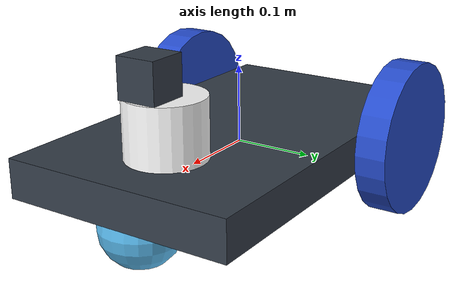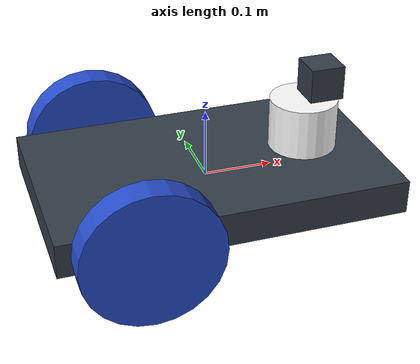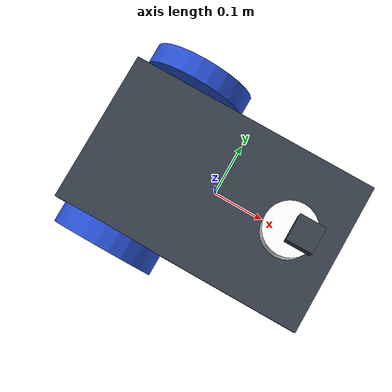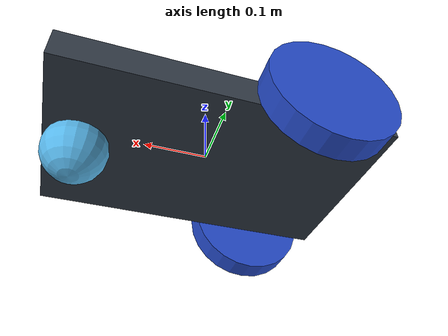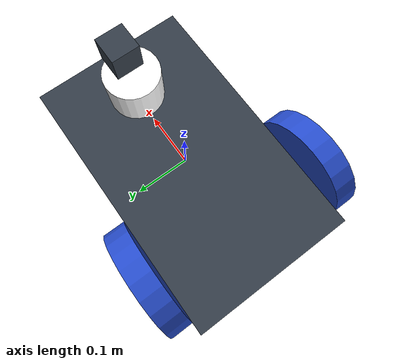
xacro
<?xml version="1.0" ?>

<robot name="wheeled-robot" xmlns:xacro="https://www.ros.org/wiki/xacro" >

<!-- Camera Parameters -->
<xacro:property name = "cameraSize" value = "0.05" />
<xacro:property name = "cameraMass" value = "0.1" />

<xacro:include filename="$(find wheeled-robot-description)/urdf/materials.xacro" />
<xacro:include filename="$(find wheeled-robot-description)/urdf/robot.gazebo" />
<xacro:include filename="$(find wheeled-robot-description)/urdf/macro.xacro" />

<!-- Robot Body    -->
  <link name="link_chassis">
    <!-- pose and inertial -->
    <pose>0 0 0.1 0 0 0</pose>
    <inertial>
      <mass value="5"/>
      <origin rpy="0 0 0" xyz="0 0 0.1"/>
      <inertia ixx="0.0395416666667" ixy="0" ixz="0" iyy="0.106208333333" iyz="0" izz="0.106208333333"/>
    </inertial>
    <collision name="collision_chassis">
      <geometry>
        <box size="0.5 0.3 0.05"/>
      </geometry>
    </collision>
    <visual>
      <origin rpy="0 0 0" xyz="0 0 0"/>
      <geometry>
        <box size="0.5 0.3 0.05"/>
      </geometry>
      <material name="blue"/>
    </visual>
    </link>

<!-- Caster  -->
  <link name = "caster_front">
    <inertial>
      <mass value="0.1"/>
      <inertia ixx="3.569e-7" ixy="0.000e+0" ixz="0.000e+0" iyy="5.344e-7" iyz="0.000e+0" izz="3.569e-7"/>
    </inertial>
    <collision name="caster_front_collision">
      <geometry>
        <sphere radius="0.05"/>
      </geometry>
      <surface>
        <friction>
          <ode>
            <mu>0</mu>
            <mu2>0</mu2>
            <slip1>1.0</slip1>
            <slip2>1.0</slip2>
          </ode>
        </friction>
      </surface>
    </collision>
    <visual name="caster_front_visual">
      <geometry>
        <sphere radius="0.05"/>
      </geometry>
    </visual>
  </link>

  <!-- Caster Joint  -->
  <joint name = "caster_front_to_chassis" type = "continuous">
    <parent link="link_chassis"/>
    <child link="caster_front"/>
    <origin rpy=" 0 0 0" xyz="0.2 0 -0.04"/>
    <axis xyz="1 1 0"/>
  </joint>

  <!-- Create wheel right -->
  <xacro:link_wheel name="link_right_wheel" />
  <!--   Joint for right wheel  -->
  <xacro:joint_wheel name="joint_right_wheel"  child="link_right_wheel"  origin_xyz="-0.13 -0.17 0"  />
  <!-- Left Wheel link -->
  <xacro:link_wheel name="link_left_wheel" />
  <!--   Joint for left wheel  -->
  <xacro:joint_wheel name="joint_left_wheel"   child="link_left_wheel"   origin_xyz="-0.13 0.17 0"  />

<!-- Laser Sensor  -->
  <link name="sensor_laser">
    <inertial>
      <origin xyz="0 0 0" rpy="0 0 0" />
      <mass value="1" />
    <inertia ixx="0.02" ixy="0" ixz="0" iyy="0.02" iyz="0" izz="0.02"/>
    </inertial>
    <visual>
      <origin xyz="0 0 0" rpy="0 0 0" />
      <geometry>
        <cylinder radius="0.05" length="0.1"/>
      </geometry>
      <material name="white" />
    </visual>
    <collision>
      <origin xyz="0 0 0" rpy="0 0 0"/>
      <geometry>
        <cylinder radius="0.05" length="0.1"/>
      </geometry>
    </collision>
  </link>

<!-- Laser Sensor Joint  -->
  <joint name="joint_sensor_laser" type="fixed">
    <origin xyz="0.15 0 0.05" rpy="0 0 0"/>
    <parent link="link_chassis"/>
    <child link="sensor_laser"/>
  </joint>

<!-- Camera -->
  <link name="camera">
  <collision>
    <origin xyz="0 0 0" rpy="0 0 0"/>
    <geometry>
      <box size="${cameraSize} ${cameraSize} ${cameraSize}"/>
    </geometry>
  </collision>
  <visual>
    <origin xyz="0 0 0" rpy="0 0 0"/>
    <geometry>
      <box size="${cameraSize} ${cameraSize} ${cameraSize}"/>
    </geometry>
    <material name="blue"/>
  </visual>
  <inertial>
    <mass value="${cameraMass}" />
    <origin xyz="0 0 0" rpy="0 0 0"/>
    <box_inertia m="${cameraMass}" x="${cameraSize}" y="${cameraSize}" z="${cameraSize}" />
  </inertial>
</link>

<!-- Camera Joint -->
<joint name="camera_joint" type="fixed">
  <axis xyz="0.0 1.0 0.0"/>
  <origin xyz="0.175 0.0 0.127" rpy="0.0 0.0 0.0"/>
  <parent link="link_chassis"/>
  <child link="camera"/>
</joint>

</robot>

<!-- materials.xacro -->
<robot name="wheeled-robot" xmlns:xacro="https://www.ros.org/wiki/xacro" >
  <material name="black">
    <color rgba="0.0 0.0 0.0 1.0"/>
  </material>
  <material name="blue">
    <color rgba="0.203125 0.23828125 0.28515625 1.0"/>
  </material>
  <material name="green">
    <color rgba="0.0 0.8 0.0 1.0"/>
  </material>
  <material name="grey">
    <color rgba="0.2 0.2 0.2 1.0"/>
  </material>
  <material name="orange">
    <color rgba="1.0 0.423529411765 0.0392156862745 1.0"/>
  </material>
  <material name="brown">
    <color rgba="0.870588235294 0.811764705882 0.764705882353 1.0"/>
  </material>
  <material name="red">
    <color rgba="0.80078125 0.12890625 0.1328125 1.0"/>
  </material>
  <material name="white">
    <color rgba="1.0 1.0 1.0 1.0"/>
  </material>
</robot>

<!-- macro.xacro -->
<robot xmlns:xacro="http://www.ros.org/wiki/xacro">
    <xacro:macro name="link_wheel" params="name">
        <link name="${name}">
            <inertial>
              <mass value="0.2"/>
              <origin rpy="0 1.5707 1.5707" xyz="0 0 0"/>
              <inertia ixx="0.000526666666667" ixy="0" ixz="0" iyy="0.000526666666667" iyz="0" izz="0.001"/>
            </inertial>
            <collision name="link_right_wheel_collision">
              <origin rpy="0 1.5707 1.5707" xyz="0 0 0"/>
              <geometry>
                <cylinder length="0.04" radius="0.1"/>
              </geometry>
            </collision>
            <visual name="${name}_visual">
              <origin rpy="0 1.5707 1.5707" xyz="0 0 0"/>
              <geometry>
                <cylinder length="0.04" radius="0.1"/>
              </geometry>
            </visual>
        </link>
    </xacro:macro>

    <xacro:macro name="joint_wheel" params="name child origin_xyz">
      <joint name="${name}" type="continuous">
        <origin rpy="0 0 0" xyz="${origin_xyz}"/>
        <child link="${child}"/>
        <parent link="link_chassis"/>
        <axis rpy="0 0 0" xyz="0 1 0"/>
        <limit effort="10000" velocity="1000"/>
        <joint_properties damping="1.0" friction="1.0"/>
      </joint>
    </xacro:macro>

    <macro name="cylinder_inertia" params="m r h">
      <inertia  ixx="${m*(3*r*r+h*h)/12}" ixy = "0" ixz = "0"
        iyy="${m*(3*r*r+h*h)/12}" iyz = "0"
        izz="${m*r*r/2}"
      />
    </macro>

    <macro name="box_inertia" params="m x y z">
      <inertia  ixx="${m*(y*y+z*z)/12}" ixy = "0" ixz = "0"
        iyy="${m*(x*x+z*z)/12}" iyz = "0"
        izz="${m*(x*x+z*z)/12}"
      />
    </macro>

    <macro name="sphere_inertia" params="m r">
      <inertia  ixx="${2*m*r*r/5}" ixy = "0" ixz = "0"
        iyy="${2*m*r*r/5}" iyz = "0"
        izz="${2*m*r*r/5}"
      />
    </macro>

</robot>
